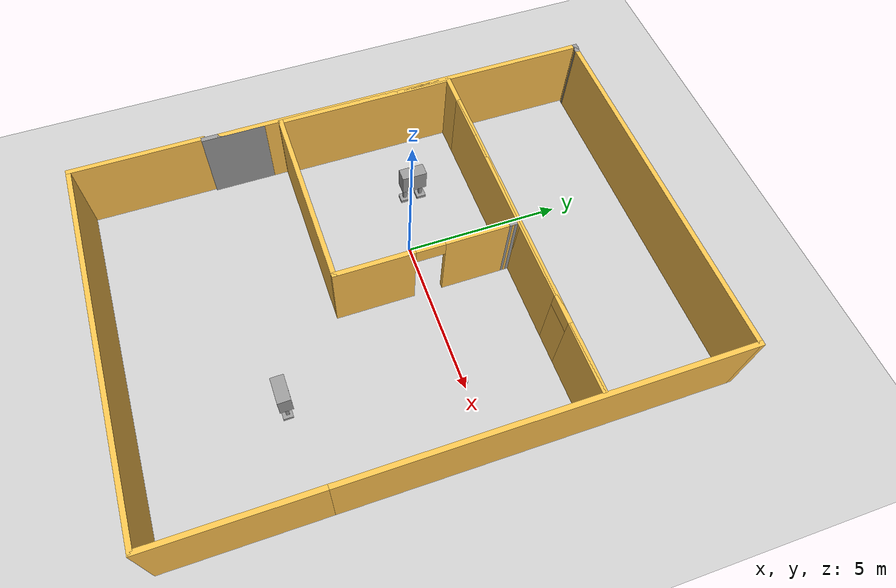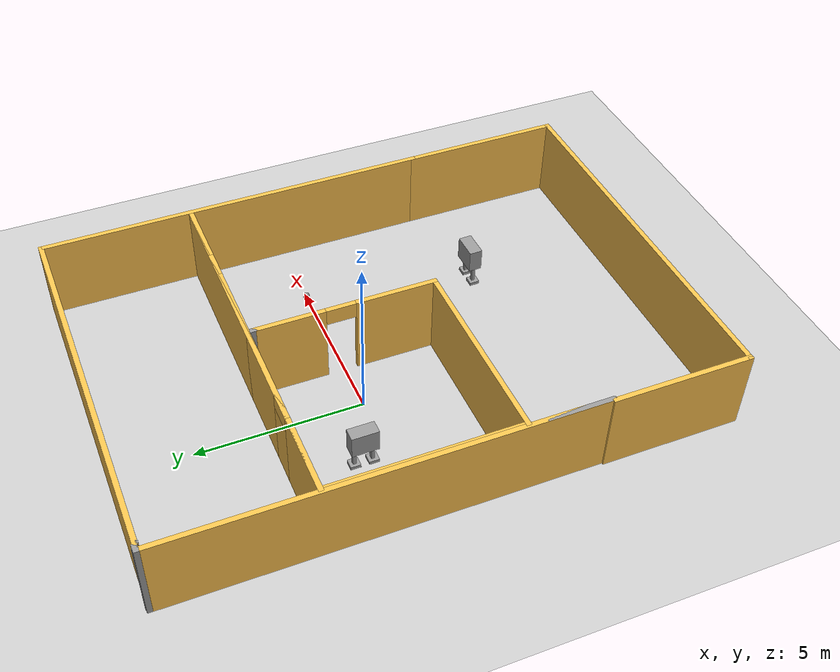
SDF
<sdf version="1.7">
 <world name="default">
  <plugin name="hello" filename="libhello.so"/>
  <light name="sun" type="directional">
   <pose>0 0 10 0 -0 0</pose>
   <diffuse>0.8 0.8 0.8 1</diffuse>
   <specular>0.2 0.2 0.2 1</specular>
   <attenuation>
    <range>1000</range>
    <constant>0.9</constant>
    <linear>0.01</linear>
    <quadratic>0.001</quadratic>
   </attenuation>
   <direction>-0.5 0.1 -0.9</direction>
   <spot><inner_angle>0</inner_angle><outer_angle>0</outer_angle><falloff>0</falloff></spot>
  </light>
  <model name="ground_plane">
   <static>1</static>
   <link name="link">
    <collision name="collision">
     <geometry><plane><normal>0 0 1</normal><size>100 100</size></plane></geometry>
     <surface>
      <contact><collide_bitmask>65535</collide_bitmask></contact>
      <friction><ode><mu>100</mu><mu2>50</mu2></ode></friction>
     </surface>
    </collision>
    <visual name="visual">
     <cast_shadows>0</cast_shadows>
     <geometry><plane><normal>0 0 1</normal><size>100 100</size></plane></geometry>
     <material>
      <script><uri>file://media/materials/scripts/gazebo.material</uri><name>Gazebo/Grey</name></script>
     </material>
    </visual>
   </link>
  </model>
  <gravity>0 0 -9.8</gravity>
  <magnetic_field>6e-06 2.3e-05 -4.2e-05</magnetic_field>
  <atmosphere type="adiabatic"/>
  <physics type="ode">
   <max_step_size>0.001</max_step_size>
   <real_time_factor>1</real_time_factor>
   <real_time_update_rate>1000</real_time_update_rate>
  </physics>
  <scene><ambient>0.4 0.4 0.4 1</ambient><background>0.7 0.7 0.7 1</background><shadows>1</shadows></scene>
  <spherical_coordinates>
   <surface_model>EARTH_WGS84</surface_model>
   <latitude_deg>0</latitude_deg>
   <longitude_deg>0</longitude_deg>
   <elevation>0</elevation>
   <heading_deg>0</heading_deg>
  </spherical_coordinates>
  <light name="user_point_light_0" type="point">
   <pose>-0.072578 -0.231324 1 0 -0 0</pose>
   <diffuse>0.5 0.5 0.5 1</diffuse>
   <specular>0.1 0.1 0.1 1</specular>
   <attenuation>
    <range>20</range>
    <constant>0.5</constant>
    <linear>0.01</linear>
    <quadratic>0.001</quadratic>
   </attenuation>
   <cast_shadows>0</cast_shadows>
   <direction>0 0 -1</direction>
   <spot><inner_angle>0</inner_angle><outer_angle>0</outer_angle><falloff>0</falloff></spot>
  </light>
  <model name="building2">
   <pose>1.37939 -1.00848 0 0 -0 0</pose>
   <link name="Wall_0">
    <collision name="Wall_0_Collision">
     <geometry><box><size>4.25 0.15 2.5</size></box></geometry>
     <pose>0 0 1.25 0 -0 0</pose>
    </collision>
    <visual name="Wall_0_Visual">
     <pose>0 0 1.25 0 -0 0</pose>
     <geometry><box><size>4.25 0.15 2.5</size></box></geometry>
     <material>
      <script><uri>file://media/materials/scripts/gazebo.material</uri><name>Gazebo/Grey</name></script>
      <ambient>1 0.764706 0.305882 1</ambient>
     </material>
     <meta><layer>0</layer></meta>
    </visual>
    <pose>-5.8 -6.32137 0 0 -0 -1.5708</pose>
   </link>
   <link name="Wall_1">
    <collision name="Wall_1_Collision">
     <geometry><box><size>11.75 0.15 2.5</size></box></geometry>
     <pose>0 0 1.25 0 -0 0</pose>
    </collision>
    <visual name="Wall_1_Visual">
     <pose>0 0 1.25 0 -0 0</pose>
     <geometry><box><size>11.75 0.15 2.5</size></box></geometry>
     <material>
      <script><uri>file://media/materials/scripts/gazebo.material</uri><name>Gazebo/Grey</name></script>
      <ambient>1 0.764706 0.305882 1</ambient>
     </material>
     <meta><layer>0</layer></meta>
    </visual>
    <pose>-0 -8.37137 0 0 -0 0</pose>
   </link>
   <link name="Wall_10">
    <collision name="Wall_10_Collision">
     <geometry><box><size>10.5 0.15 2.5</size></box></geometry>
     <pose>0 0 1.25 0 -0 0</pose>
    </collision>
    <visual name="Wall_10_Visual">
     <pose>0 0 1.25 0 -0 0</pose>
     <geometry><box><size>10.5 0.15 2.5</size></box></geometry>
     <material>
      <script><uri>file://media/materials/scripts/gazebo.material</uri><name>Gazebo/Grey</name></script>
      <ambient>1 0.764706 0.305882 1</ambient>
     </material>
     <meta><layer>0</layer></meta>
    </visual>
    <pose>0.497202 3.79652 0 0 -0 0</pose>
   </link>
   <link name="Wall_11">
    <pose>-0.002798 3.79652 0 0 -0 3.14159</pose>
    <visual name="Wall_11_Visual_0">
     <pose>-4.69672 0 1.25 0 -0 0</pose>
     <geometry><box><size>2.10657 0.15 2.5</size></box></geometry>
     <material>
      <script><uri>file://media/materials/scripts/gazebo.material</uri><name>Gazebo/Grey</name></script>
      <ambient>1 0.764706 0.305882 1</ambient>
     </material>
     <meta><layer>0</layer></meta>
    </visual>
    <collision name="Wall_11_Collision_0">
     <geometry><box><size>2.10657 0.15 2.5</size></box></geometry>
     <pose>-4.69672 0 1.25 0 -0 0</pose>
    </collision>
    <visual name="Wall_11_Visual_1">
     <pose>-0.212516 0 1.25 0 -0 0</pose>
     <geometry><box><size>5.06183 0.15 2.5</size></box></geometry>
     <material>
      <script><uri>file://media/materials/scripts/gazebo.material</uri><name>Gazebo/Grey</name></script>
      <ambient>1 0.764706 0.305882 1</ambient>
     </material>
     <meta><layer>0</layer></meta>
    </visual>
    <collision name="Wall_11_Collision_1">
     <geometry><box><size>5.06183 0.15 2.5</size></box></geometry>
     <pose>-0.212516 0 1.25 0 -0 0</pose>
    </collision>
    <visual name="Wall_11_Visual_2">
     <pose>4.4842 0 1.25 0 -0 0</pose>
     <geometry><box><size>2.5316 0.15 2.5</size></box></geometry>
     <material>
      <script><uri>file://media/materials/scripts/gazebo.material</uri><name>Gazebo/Grey</name></script>
      <ambient>1 0.764706 0.305882 1</ambient>
     </material>
     <meta><layer>0</layer></meta>
    </visual>
    <collision name="Wall_11_Collision_2">
     <geometry><box><size>2.5316 0.15 2.5</size></box></geometry>
     <pose>4.4842 0 1.25 0 -0 0</pose>
    </collision>
    <visual name="Wall_11_Visual_3">
     <pose>-3.19343 0 2.25 0 -0 0</pose>
     <geometry><box><size>0.9 0.15 0.5</size></box></geometry>
     <material>
      <script><uri>file://media/materials/scripts/gazebo.material</uri><name>Gazebo/Grey</name></script>
      <ambient>1 0.764706 0.305882 1</ambient>
     </material>
     <meta><layer>0</layer></meta>
    </visual>
    <collision name="Wall_11_Collision_3">
     <geometry><box><size>0.9 0.15 0.5</size></box></geometry>
     <pose>-3.19343 0 2.25 0 -0 0</pose>
    </collision>
    <visual name="Wall_11_Visual_4">
     <pose>2.7684 0 2.25 0 -0 0</pose>
     <geometry><box><size>0.9 0.15 0.5</size></box></geometry>
     <material>
      <script><uri>file://media/materials/scripts/gazebo.material</uri><name>Gazebo/Grey</name></script>
      <ambient>1 0.764706 0.305882 1</ambient>
     </material>
     <meta><layer>0</layer></meta>
    </visual>
    <collision name="Wall_11_Collision_4">
     <geometry><box><size>0.9 0.15 0.5</size></box></geometry>
     <pose>2.7684 0 2.25 0 -0 0</pose>
    </collision>
   </link>
   <link name="Wall_12">
    <collision name="Wall_12_Collision">
     <geometry><box><size>5.75 0.15 2.5</size></box></geometry>
     <pose>0 0 1.25 0 -0 0</pose>
    </collision>
    <visual name="Wall_12_Visual">
     <pose>0 0 1.25 0 -0 0</pose>
     <geometry><box><size>5.75 0.15 2.5</size></box></geometry>
     <material>
      <script><uri>file://media/materials/scripts/gazebo.material</uri><name>Gazebo/Grey</name></script>
      <ambient>1 0.764706 0.305882 1</ambient>
     </material>
     <meta><layer>0</layer></meta>
    </visual>
    <pose>-5.6778 0.996518 0 0 -0 -1.5708</pose>
   </link>
   <link name="Wall_13">
    <collision name="Wall_13_Collision">
     <geometry><box><size>6 0.15 2.5</size></box></geometry>
     <pose>0 0 1.25 0 -0 0</pose>
    </collision>
    <visual name="Wall_13_Visual">
     <pose>0 0 1.25 0 -0 0</pose>
     <geometry><box><size>6 0.15 2.5</size></box></geometry>
     <material>
      <script><uri>file://media/materials/scripts/gazebo.material</uri><name>Gazebo/Grey</name></script>
      <ambient>1 0.764706 0.305882 1</ambient>
     </material>
     <meta><layer>0</layer></meta>
    </visual>
    <pose>-2.7528 -1.80348 0 0 -0 0</pose>
   </link>
   <link name="Wall_14">
    <pose>0.172202 0.871518 0 0 -0 1.5708</pose>
    <visual name="Wall_14_Visual_0">
     <pose>-1.50462 0 1.25 0 -0 0</pose>
     <geometry><box><size>2.49076 0.15 2.5</size></box></geometry>
     <material>
      <script><uri>file://media/materials/scripts/gazebo.material</uri><name>Gazebo/Grey</name></script>
      <ambient>1 0.764706 0.305882 1</ambient>
     </material>
     <meta><layer>0</layer></meta>
    </visual>
    <collision name="Wall_14_Collision_0">
     <geometry><box><size>2.49076 0.15 2.5</size></box></geometry>
     <pose>-1.50462 0 1.25 0 -0 0</pose>
    </collision>
    <visual name="Wall_14_Visual_1">
     <pose>1.69538 0 1.25 0 -0 0</pose>
     <geometry><box><size>2.10924 0.15 2.5</size></box></geometry>
     <material>
      <script><uri>file://media/materials/scripts/gazebo.material</uri><name>Gazebo/Grey</name></script>
      <ambient>1 0.764706 0.305882 1</ambient>
     </material>
     <meta><layer>0</layer></meta>
    </visual>
    <collision name="Wall_14_Collision_1">
     <geometry><box><size>2.10924 0.15 2.5</size></box></geometry>
     <pose>1.69538 0 1.25 0 -0 0</pose>
    </collision>
    <visual name="Wall_14_Visual_2">
     <pose>0.190763 0 2.25 0 -0 0</pose>
     <geometry><box><size>0.9 0.15 0.5</size></box></geometry>
     <material>
      <script><uri>file://media/materials/scripts/gazebo.material</uri><name>Gazebo/Grey</name></script>
      <ambient>1 0.764706 0.305882 1</ambient>
     </material>
     <meta><layer>0</layer></meta>
    </visual>
    <collision name="Wall_14_Collision_2">
     <geometry><box><size>0.9 0.15 0.5</size></box></geometry>
     <pose>0.190763 0 2.25 0 -0 0</pose>
    </collision>
   </link>
   <link name="Wall_15">
    <collision name="Wall_15_Collision">
     <geometry><box><size>0.25 0.15 2.5</size></box></geometry>
     <pose>0 0 1.25 0 -0 0</pose>
    </collision>
    <visual name="Wall_15_Visual">
     <pose>0 0 1.25 0 -0 0</pose>
     <geometry><box><size>0.25 0.15 2.5</size></box></geometry>
     <material>
      <script><uri>file://media/materials/scripts/gazebo.material</uri><name>Gazebo/Grey</name></script>
      <ambient>1 1 1 1</ambient>
     </material>
     <meta><layer>0</layer></meta>
    </visual>
    <pose>0.172101 3.59658 0 0 -0 1.57281</pose>
   </link>
   <link name="Wall_2">
    <collision name="Wall_2_Collision">
     <geometry><box><size>5 0.15 2.5</size></box></geometry>
     <pose>0 0 1.25 0 -0 0</pose>
    </collision>
    <visual name="Wall_2_Visual">
     <pose>0 0 1.25 0 -0 0</pose>
     <geometry><box><size>5 0.15 2.5</size></box></geometry>
     <material>
      <script><uri>file://media/materials/scripts/gazebo.material</uri><name>Gazebo/Grey</name></script>
      <ambient>1 0.764706 0.305882 1</ambient>
     </material>
     <meta><layer>0</layer></meta>
    </visual>
    <pose>5.8 -5.94637 0 0 -0 1.5708</pose>
   </link>
   <link name="Wall_3">
    <collision name="Wall_3_Collision">
     <geometry><box><size>12 0.15 2.5</size></box></geometry>
     <pose>0 0 1.25 0 -0 0</pose>
    </collision>
    <visual name="Wall_3_Visual">
     <pose>0 0 1.25 0 -0 0</pose>
     <geometry><box><size>12 0.15 2.5</size></box></geometry>
     <material>
      <script><uri>file://media/materials/scripts/gazebo.material</uri><name>Gazebo/Grey</name></script>
      <ambient>1 0.764706 0.305882 1</ambient>
     </material>
     <meta><layer>0</layer></meta>
    </visual>
    <pose>5.8 2.40363 0 0 -0 1.5708</pose>
   </link>
   <link name="Wall_4">
    <collision name="Wall_4_Collision">
     <geometry><box><size>11.5 0.15 2.5</size></box></geometry>
     <pose>0 0 1.25 0 -0 0</pose>
    </collision>
    <visual name="Wall_4_Visual">
     <pose>0 0 1.25 0 -0 0</pose>
     <geometry><box><size>11.5 0.15 2.5</size></box></geometry>
     <material>
      <script><uri>file://media/materials/scripts/gazebo.material</uri><name>Gazebo/Grey</name></script>
      <ambient>1 0.764706 0.305882 1</ambient>
     </material>
     <meta><layer>0</layer></meta>
    </visual>
    <pose>0.125 8.32863 0 0 -0 3.14159</pose>
   </link>
   <link name="Wall_5">
    <collision name="Wall_5_Collision">
     <geometry><box><size>0.25 0.15 2.5</size></box></geometry>
     <pose>0 0 1.25 0 -0 0</pose>
    </collision>
    <visual name="Wall_5_Visual">
     <pose>0 0 1.25 0 -0 0</pose>
     <geometry><box><size>0.25 0.15 2.5</size></box></geometry>
     <material>
      <script><uri>file://media/materials/scripts/gazebo.material</uri><name>Gazebo/Grey</name></script>
      <ambient>1 1 1 1</ambient>
     </material>
     <meta><layer>0</layer></meta>
    </visual>
    <pose>-5.5983 8.34157 0 0 -0 2.87979</pose>
   </link>
   <link name="Wall_6">
    <collision name="Wall_6_Collision">
     <geometry><box><size>0.25 0.15 2.5</size></box></geometry>
     <pose>0 0 1.25 0 -0 0</pose>
    </collision>
    <visual name="Wall_6_Visual">
     <pose>0 0 1.25 0 -0 0</pose>
     <geometry><box><size>0.25 0.15 2.5</size></box></geometry>
     <material>
      <script><uri>file://media/materials/scripts/gazebo.material</uri><name>Gazebo/Grey</name></script>
      <ambient>1 1 1 1</ambient>
     </material>
     <meta><layer>0</layer></meta>
    </visual>
    <pose>-5.69659 8.35451 0 0 -0 3.14159</pose>
   </link>
   <link name="Wall_7">
    <collision name="Wall_7_Collision">
     <geometry><box><size>12.75 0.15 2.5</size></box></geometry>
     <pose>0 0 1.25 0 -0 0</pose>
    </collision>
    <visual name="Wall_7_Visual">
     <pose>0 0 1.25 0 -0 0</pose>
     <geometry><box><size>12.75 0.15 2.5</size></box></geometry>
     <material>
      <script><uri>file://media/materials/scripts/gazebo.material</uri><name>Gazebo/Grey</name></script>
      <ambient>1 0.764706 0.305882 1</ambient>
     </material>
     <meta><layer>0</layer></meta>
    </visual>
    <pose>-5.74659 2.05451 0 0 -0 -1.5708</pose>
   </link>
   <link name="Wall_8">
    <collision name="Wall_8_Collision">
     <geometry><box><size>2 0.15 2.5</size></box></geometry>
     <pose>0 0 1.25 0 -0 0</pose>
    </collision>
    <visual name="Wall_8_Visual">
     <pose>0 0 1.25 0 -0 0</pose>
     <geometry><box><size>2 0.15 2.5</size></box></geometry>
     <material>
      <script><uri>file://media/materials/scripts/gazebo.material</uri><name>Gazebo/Grey</name></script>
      <ambient>1 1 1 1</ambient>
     </material>
     <meta><layer>0</layer></meta>
    </visual>
    <pose>-5.74659 -3.32049 0 0 -0 1.5708</pose>
   </link>
   <static>1</static>
  </model>
  <model name="robot2">
   <link name="link_0">
    <inertial>
     <mass>1</mass>
     <inertia>
      <ixx>0.166667</ixx>
      <ixy>0</ixy>
      <ixz>0</ixz>
      <iyy>0.166667</iyy>
      <iyz>0</iyz>
      <izz>0.166667</izz>
     </inertia>
    </inertial>
    <pose>-0.10875 0.297304 -0.300564 0 -0 0</pose>
    <visual name="visual">
     <geometry><box><size>0.3 0.3 0.1</size></box></geometry>
     <material>
      <lighting>1</lighting>
      <script><uri>file://media/materials/scripts/gazebo.material</uri><name>Gazebo/Grey</name></script>
      <shader type="pixel"><normal_map>__default__</normal_map></shader>
      <ambient>0.3 0.3 0.3 1</ambient>
      <diffuse>0.7 0.7 0.7 1</diffuse>
      <specular>0.01 0.01 0.01 1</specular>
      <emissive>0 0 0 1</emissive>
     </material>
    </visual>
    <collision name="collision">
     <geometry><box><size>0.3 0.3 0.1</size></box></geometry>
     <surface>
      <friction>
       <ode><mu>1</mu><mu2>1</mu2><fdir1>0 0 0</fdir1><slip1>0</slip1><slip2>0</slip2></ode>
       <torsional>
        <coefficient>1</coefficient>
        <patch_radius>0</patch_radius>
        <surface_radius>0</surface_radius>
        <use_patch_radius>1</use_patch_radius>
        <ode><slip>0</slip></ode>
       </torsional>
      </friction>
      <bounce><restitution_coefficient>0</restitution_coefficient><threshold>1e+06</threshold></bounce>
      <contact>
       <collide_without_contact>0</collide_without_contact>
       <collide_without_contact_bitmask>1</collide_without_contact_bitmask>
       <collide_bitmask>1</collide_bitmask>
       <ode>
        <soft_cfm>0</soft_cfm>
        <soft_erp>0.2</soft_erp>
        <kp>1e+13</kp>
        <kd>1</kd>
        <max_vel>0.01</max_vel>
        <min_depth>0</min_depth>
       </ode>
       <bullet>
        <split_impulse>1</split_impulse>
        <split_impulse_penetration_threshold>-0.01</split_impulse_penetration_threshold>
        <soft_cfm>0</soft_cfm>
        <soft_erp>0.2</soft_erp>
        <kp>1e+13</kp>
        <kd>1</kd>
       </bullet>
      </contact>
     </surface>
    </collision>
   </link>
   <link name="link_0_clone">
    <inertial>
     <mass>1</mass>
     <inertia>
      <ixx>0.166667</ixx>
      <ixy>0</ixy>
      <ixz>0</ixz>
      <iyy>0.166667</iyy>
      <iyz>0</iyz>
      <izz>0.166667</izz>
     </inertia>
    </inertial>
    <pose>-0.116165 -0.240498 -0.300564 0 -0 0</pose>
    <visual name="visual">
     <geometry><box><size>0.3 0.3 0.1</size></box></geometry>
     <material>
      <lighting>1</lighting>
      <script><uri>file://media/materials/scripts/gazebo.material</uri><name>Gazebo/Grey</name></script>
      <shader type="pixel"><normal_map>__default__</normal_map></shader>
      <ambient>0.3 0.3 0.3 1</ambient>
      <diffuse>0.7 0.7 0.7 1</diffuse>
      <specular>0.01 0.01 0.01 1</specular>
      <emissive>0 0 0 1</emissive>
     </material>
    </visual>
    <collision name="collision">
     <geometry><box><size>0.3 0.3 0.1</size></box></geometry>
     <surface>
      <friction>
       <ode><mu>1</mu><mu2>1</mu2><fdir1>0 0 0</fdir1><slip1>0</slip1><slip2>0</slip2></ode>
       <torsional>
        <coefficient>1</coefficient>
        <patch_radius>0</patch_radius>
        <surface_radius>0</surface_radius>
        <use_patch_radius>1</use_patch_radius>
        <ode><slip>0</slip></ode>
       </torsional>
      </friction>
      <bounce><restitution_coefficient>0</restitution_coefficient><threshold>1e+06</threshold></bounce>
      <contact>
       <collide_without_contact>0</collide_without_contact>
       <collide_without_contact_bitmask>1</collide_without_contact_bitmask>
       <collide_bitmask>1</collide_bitmask>
       <ode>
        <soft_cfm>0</soft_cfm>
        <soft_erp>0.2</soft_erp>
        <kp>1e+13</kp>
        <kd>1</kd>
        <max_vel>0.01</max_vel>
        <min_depth>0</min_depth>
       </ode>
       <bullet>
        <split_impulse>1</split_impulse>
        <split_impulse_penetration_threshold>-0.01</split_impulse_penetration_threshold>
        <soft_cfm>0</soft_cfm>
        <soft_erp>0.2</soft_erp>
        <kp>1e+13</kp>
        <kd>1</kd>
       </bullet>
      </contact>
     </surface>
    </collision>
   </link>
   <link name="link_1">
    <inertial>
     <mass>1</mass>
     <inertia>
      <ixx>0.166667</ixx>
      <ixy>0</ixy>
      <ixz>0</ixz>
      <iyy>0.166667</iyy>
      <iyz>0</iyz>
      <izz>0.166667</izz>
     </inertia>
    </inertial>
    <pose>-0.122505 0.298897 -0.001461 0 -0 0</pose>
    <visual name="visual">
     <geometry><box><size>0.1 0.1 0.5</size></box></geometry>
     <material>
      <lighting>1</lighting>
      <script><uri>file://media/materials/scripts/gazebo.material</uri><name>Gazebo/Grey</name></script>
      <shader type="pixel"><normal_map>__default__</normal_map></shader>
      <ambient>0.3 0.3 0.3 1</ambient>
      <diffuse>0.7 0.7 0.7 1</diffuse>
      <specular>0.01 0.01 0.01 1</specular>
      <emissive>0 0 0 1</emissive>
     </material>
    </visual>
    <collision name="collision">
     <geometry><box><size>0.1 0.1 0.5</size></box></geometry>
     <surface>
      <friction>
       <ode><mu>1</mu><mu2>1</mu2><fdir1>0 0 0</fdir1><slip1>0</slip1><slip2>0</slip2></ode>
       <torsional>
        <coefficient>1</coefficient>
        <patch_radius>0</patch_radius>
        <surface_radius>0</surface_radius>
        <use_patch_radius>1</use_patch_radius>
        <ode><slip>0</slip></ode>
       </torsional>
      </friction>
      <bounce><restitution_coefficient>0</restitution_coefficient><threshold>1e+06</threshold></bounce>
      <contact>
       <collide_without_contact>0</collide_without_contact>
       <collide_without_contact_bitmask>1</collide_without_contact_bitmask>
       <collide_bitmask>1</collide_bitmask>
       <ode>
        <soft_cfm>0</soft_cfm>
        <soft_erp>0.2</soft_erp>
        <kp>1e+13</kp>
        <kd>1</kd>
        <max_vel>0.01</max_vel>
        <min_depth>0</min_depth>
       </ode>
       <bullet>
        <split_impulse>1</split_impulse>
        <split_impulse_penetration_threshold>-0.01</split_impulse_penetration_threshold>
        <soft_cfm>0</soft_cfm>
        <soft_erp>0.2</soft_erp>
        <kp>1e+13</kp>
        <kd>1</kd>
       </bullet>
      </contact>
     </surface>
    </collision>
   </link>
   <link name="link_1_clone_0">
    <inertial>
     <mass>1</mass>
     <inertia>
      <ixx>0.166667</ixx>
      <ixy>0</ixy>
      <ixz>0</ixz>
      <iyy>0.166667</iyy>
      <iyz>0</iyz>
      <izz>0.166667</izz>
     </inertia>
    </inertial>
    <pose>-0.126 -0.231791 -0.001461 0 -0 0</pose>
    <visual name="visual">
     <geometry><box><size>0.1 0.1 0.5</size></box></geometry>
     <material>
      <lighting>1</lighting>
      <script><uri>file://media/materials/scripts/gazebo.material</uri><name>Gazebo/Grey</name></script>
      <shader type="pixel"><normal_map>__default__</normal_map></shader>
      <ambient>0.3 0.3 0.3 1</ambient>
      <diffuse>0.7 0.7 0.7 1</diffuse>
      <specular>0.01 0.01 0.01 1</specular>
      <emissive>0 0 0 1</emissive>
     </material>
    </visual>
    <collision name="collision">
     <geometry><box><size>0.1 0.1 0.5</size></box></geometry>
     <surface>
      <friction>
       <ode><mu>1</mu><mu2>1</mu2><fdir1>0 0 0</fdir1><slip1>0</slip1><slip2>0</slip2></ode>
       <torsional>
        <coefficient>1</coefficient>
        <patch_radius>0</patch_radius>
        <surface_radius>0</surface_radius>
        <use_patch_radius>1</use_patch_radius>
        <ode><slip>0</slip></ode>
       </torsional>
      </friction>
      <bounce><restitution_coefficient>0</restitution_coefficient><threshold>1e+06</threshold></bounce>
      <contact>
       <collide_without_contact>0</collide_without_contact>
       <collide_without_contact_bitmask>1</collide_without_contact_bitmask>
       <collide_bitmask>1</collide_bitmask>
       <ode>
        <soft_cfm>0</soft_cfm>
        <soft_erp>0.2</soft_erp>
        <kp>1e+13</kp>
        <kd>1</kd>
        <max_vel>0.01</max_vel>
        <min_depth>0</min_depth>
       </ode>
       <bullet>
        <split_impulse>1</split_impulse>
        <split_impulse_penetration_threshold>-0.01</split_impulse_penetration_threshold>
        <soft_cfm>0</soft_cfm>
        <soft_erp>0.2</soft_erp>
        <kp>1e+13</kp>
        <kd>1</kd>
       </bullet>
      </contact>
     </surface>
    </collision>
   </link>
   <link name="link_2">
    <inertial>
     <mass>1</mass>
     <inertia>
      <ixx>0.166667</ixx>
      <ixy>0</ixy>
      <ixz>0</ixz>
      <iyy>0.166667</iyy>
      <iyz>0</iyz>
      <izz>0.166667</izz>
     </inertia>
    </inertial>
    <pose>-0.125925 0.03292 0.605509 0 -0 0</pose>
    <visual name="visual">
     <geometry><box><size>0.4 0.8 0.7</size></box></geometry>
     <material>
      <lighting>1</lighting>
      <script><uri>file://media/materials/scripts/gazebo.material</uri><name>Gazebo/Grey</name></script>
      <shader type="pixel"><normal_map>__default__</normal_map></shader>
      <ambient>0.3 0.3 0.3 1</ambient>
      <diffuse>0.7 0.7 0.7 1</diffuse>
      <specular>0.01 0.01 0.01 1</specular>
      <emissive>0 0 0 1</emissive>
     </material>
    </visual>
    <collision name="collision">
     <geometry><box><size>0.4 0.8 0.7</size></box></geometry>
     <surface>
      <friction>
       <ode><mu>1</mu><mu2>1</mu2><fdir1>0 0 0</fdir1><slip1>0</slip1><slip2>0</slip2></ode>
       <torsional>
        <coefficient>1</coefficient>
        <patch_radius>0</patch_radius>
        <surface_radius>0</surface_radius>
        <use_patch_radius>1</use_patch_radius>
        <ode><slip>0</slip></ode>
       </torsional>
      </friction>
      <bounce><restitution_coefficient>0</restitution_coefficient><threshold>1e+06</threshold></bounce>
      <contact>
       <collide_without_contact>0</collide_without_contact>
       <collide_without_contact_bitmask>1</collide_without_contact_bitmask>
       <collide_bitmask>1</collide_bitmask>
       <ode>
        <soft_cfm>0</soft_cfm>
        <soft_erp>0.2</soft_erp>
        <kp>1e+13</kp>
        <kd>1</kd>
        <max_vel>0.01</max_vel>
        <min_depth>0</min_depth>
       </ode>
       <bullet>
        <split_impulse>1</split_impulse>
        <split_impulse_penetration_threshold>-0.01</split_impulse_penetration_threshold>
        <soft_cfm>0</soft_cfm>
        <soft_erp>0.2</soft_erp>
        <kp>1e+13</kp>
        <kd>1</kd>
       </bullet>
      </contact>
     </surface>
    </collision>
   </link>
   <joint name="link_0_JOINT_0" type="revolute">
    <parent>link_0</parent>
    <child>link_1</child>
    <axis>
     <xyz>1 0 0</xyz>
     <limit>
      <lower>-1.79769e+308</lower>
      <upper>1.79769e+308</upper>
      <effort>-1</effort>
      <velocity>-1</velocity>
     </limit>
     <dynamics>
      <spring_reference>0</spring_reference>
      <spring_stiffness>0</spring_stiffness>
      <damping>0</damping>
      <friction>0</friction>
     </dynamics>
    </axis>
    <physics>
     <ode><limit><cfm>0</cfm><erp>0.2</erp></limit><suspension><cfm>0</cfm><erp>0.2</erp></suspension></ode>
    </physics>
   </joint>
   <joint name="link_0_clone_JOINT_2" type="revolute">
    <parent>link_0_clone</parent>
    <child>link_1_clone_0</child>
    <axis>
     <xyz>1 0 0</xyz>
     <limit>
      <lower>-1.79769e+308</lower>
      <upper>1.79769e+308</upper>
      <effort>-1</effort>
      <velocity>-1</velocity>
     </limit>
     <dynamics>
      <spring_reference>0</spring_reference>
      <spring_stiffness>0</spring_stiffness>
      <damping>0</damping>
      <friction>0</friction>
     </dynamics>
    </axis>
    <physics>
     <ode><limit><cfm>0</cfm><erp>0.2</erp></limit><suspension><cfm>0</cfm><erp>0.2</erp></suspension></ode>
    </physics>
   </joint>
   <joint name="link_1_JOINT_1" type="revolute">
    <parent>link_1</parent>
    <child>link_2</child>
    <axis>
     <xyz>1 0 0</xyz>
     <limit>
      <lower>-1.79769e+308</lower>
      <upper>1.79769e+308</upper>
      <effort>-1</effort>
      <velocity>-1</velocity>
     </limit>
     <dynamics>
      <spring_reference>0</spring_reference>
      <spring_stiffness>0</spring_stiffness>
      <damping>0</damping>
      <friction>0</friction>
     </dynamics>
    </axis>
    <physics>
     <ode><limit><cfm>0</cfm><erp>0.2</erp></limit><suspension><cfm>0</cfm><erp>0.2</erp></suspension></ode>
    </physics>
   </joint>
   <joint name="link_1_clone_0_JOINT_3" type="revolute">
    <parent>link_1_clone_0</parent>
    <child>link_2</child>
    <axis>
     <xyz>1 0 0</xyz>
     <limit>
      <lower>-1.79769e+308</lower>
      <upper>1.79769e+308</upper>
      <effort>-1</effort>
      <velocity>-1</velocity>
     </limit>
     <dynamics>
      <spring_reference>0</spring_reference>
      <spring_stiffness>0</spring_stiffness>
      <damping>0</damping>
      <friction>0</friction>
     </dynamics>
    </axis>
    <physics>
     <ode><limit><cfm>0</cfm><erp>0.2</erp></limit><suspension><cfm>0</cfm><erp>0.2</erp></suspension></ode>
    </physics>
   </joint>
   <static>0</static>
   <pose>-1.85631 0.755818 0.350565 -4e-06 2e-06 0.000701</pose>
  </model>
  <model name="robot2_0">
   <link name="link_0">
    <inertial>
     <mass>1</mass>
     <inertia>
      <ixx>0.166667</ixx>
      <ixy>0</ixy>
      <ixz>0</ixz>
      <iyy>0.166667</iyy>
      <iyz>0</iyz>
      <izz>0.166667</izz>
     </inertia>
    </inertial>
    <pose>-0.10875 0.297304 -0.300564 0 -0 0</pose>
    <visual name="visual">
     <geometry><box><size>0.3 0.3 0.1</size></box></geometry>
     <material>
      <lighting>1</lighting>
      <script><uri>file://media/materials/scripts/gazebo.material</uri><name>Gazebo/Grey</name></script>
      <shader type="pixel"><normal_map>__default__</normal_map></shader>
      <ambient>0.3 0.3 0.3 1</ambient>
      <diffuse>0.7 0.7 0.7 1</diffuse>
      <specular>0.01 0.01 0.01 1</specular>
      <emissive>0 0 0 1</emissive>
     </material>
    </visual>
    <collision name="collision">
     <geometry><box><size>0.3 0.3 0.1</size></box></geometry>
     <surface>
      <friction>
       <ode><mu>1</mu><mu2>1</mu2><fdir1>0 0 0</fdir1><slip1>0</slip1><slip2>0</slip2></ode>
       <torsional>
        <coefficient>1</coefficient>
        <patch_radius>0</patch_radius>
        <surface_radius>0</surface_radius>
        <use_patch_radius>1</use_patch_radius>
        <ode><slip>0</slip></ode>
       </torsional>
      </friction>
      <bounce><restitution_coefficient>0</restitution_coefficient><threshold>1e+06</threshold></bounce>
      <contact>
       <collide_without_contact>0</collide_without_contact>
       <collide_without_contact_bitmask>1</collide_without_contact_bitmask>
       <collide_bitmask>1</collide_bitmask>
       <ode>
        <soft_cfm>0</soft_cfm>
        <soft_erp>0.2</soft_erp>
        <kp>1e+13</kp>
        <kd>1</kd>
        <max_vel>0.01</max_vel>
        <min_depth>0</min_depth>
       </ode>
       <bullet>
        <split_impulse>1</split_impulse>
        <split_impulse_penetration_threshold>-0.01</split_impulse_penetration_threshold>
        <soft_cfm>0</soft_cfm>
        <soft_erp>0.2</soft_erp>
        <kp>1e+13</kp>
        <kd>1</kd>
       </bullet>
      </contact>
     </surface>
    </collision>
   </link>
   <link name="link_0_clone">
    <inertial>
     <mass>1</mass>
     <inertia>
      <ixx>0.166667</ixx>
      <ixy>0</ixy>
      <ixz>0</ixz>
      <iyy>0.166667</iyy>
      <iyz>0</iyz>
      <izz>0.166667</izz>
     </inertia>
    </inertial>
    <pose>-0.116165 -0.240498 -0.300564 0 -0 0</pose>
    <visual name="visual">
     <geometry><box><size>0.3 0.3 0.1</size></box></geometry>
     <material>
      <lighting>1</lighting>
      <script><uri>file://media/materials/scripts/gazebo.material</uri><name>Gazebo/Grey</name></script>
      <shader type="pixel"><normal_map>__default__</normal_map></shader>
      <ambient>0.3 0.3 0.3 1</ambient>
      <diffuse>0.7 0.7 0.7 1</diffuse>
      <specular>0.01 0.01 0.01 1</specular>
      <emissive>0 0 0 1</emissive>
     </material>
    </visual>
    <collision name="collision">
     <geometry><box><size>0.3 0.3 0.1</size></box></geometry>
     <surface>
      <friction>
       <ode><mu>1</mu><mu2>1</mu2><fdir1>0 0 0</fdir1><slip1>0</slip1><slip2>0</slip2></ode>
       <torsional>
        <coefficient>1</coefficient>
        <patch_radius>0</patch_radius>
        <surface_radius>0</surface_radius>
        <use_patch_radius>1</use_patch_radius>
        <ode><slip>0</slip></ode>
       </torsional>
      </friction>
      <bounce><restitution_coefficient>0</restitution_coefficient><threshold>1e+06</threshold></bounce>
      <contact>
       <collide_without_contact>0</collide_without_contact>
       <collide_without_contact_bitmask>1</collide_without_contact_bitmask>
       <collide_bitmask>1</collide_bitmask>
       <ode>
        <soft_cfm>0</soft_cfm>
        <soft_erp>0.2</soft_erp>
        <kp>1e+13</kp>
        <kd>1</kd>
        <max_vel>0.01</max_vel>
        <min_depth>0</min_depth>
       </ode>
       <bullet>
        <split_impulse>1</split_impulse>
        <split_impulse_penetration_threshold>-0.01</split_impulse_penetration_threshold>
        <soft_cfm>0</soft_cfm>
        <soft_erp>0.2</soft_erp>
        <kp>1e+13</kp>
        <kd>1</kd>
       </bullet>
      </contact>
     </surface>
    </collision>
   </link>
   <link name="link_1">
    <inertial>
     <mass>1</mass>
     <inertia>
      <ixx>0.166667</ixx>
      <ixy>0</ixy>
      <ixz>0</ixz>
      <iyy>0.166667</iyy>
      <iyz>0</iyz>
      <izz>0.166667</izz>
     </inertia>
    </inertial>
    <pose>-0.122505 0.298897 -0.001461 0 -0 0</pose>
    <visual name="visual">
     <geometry><box><size>0.1 0.1 0.5</size></box></geometry>
     <material>
      <lighting>1</lighting>
      <script><uri>file://media/materials/scripts/gazebo.material</uri><name>Gazebo/Grey</name></script>
      <shader type="pixel"><normal_map>__default__</normal_map></shader>
      <ambient>0.3 0.3 0.3 1</ambient>
      <diffuse>0.7 0.7 0.7 1</diffuse>
      <specular>0.01 0.01 0.01 1</specular>
      <emissive>0 0 0 1</emissive>
     </material>
    </visual>
    <collision name="collision">
     <geometry><box><size>0.1 0.1 0.5</size></box></geometry>
     <surface>
      <friction>
       <ode><mu>1</mu><mu2>1</mu2><fdir1>0 0 0</fdir1><slip1>0</slip1><slip2>0</slip2></ode>
       <torsional>
        <coefficient>1</coefficient>
        <patch_radius>0</patch_radius>
        <surface_radius>0</surface_radius>
        <use_patch_radius>1</use_patch_radius>
        <ode><slip>0</slip></ode>
       </torsional>
      </friction>
      <bounce><restitution_coefficient>0</restitution_coefficient><threshold>1e+06</threshold></bounce>
      <contact>
       <collide_without_contact>0</collide_without_contact>
       <collide_without_contact_bitmask>1</collide_without_contact_bitmask>
       <collide_bitmask>1</collide_bitmask>
       <ode>
        <soft_cfm>0</soft_cfm>
        <soft_erp>0.2</soft_erp>
        <kp>1e+13</kp>
        <kd>1</kd>
        <max_vel>0.01</max_vel>
        <min_depth>0</min_depth>
       </ode>
       <bullet>
        <split_impulse>1</split_impulse>
        <split_impulse_penetration_threshold>-0.01</split_impulse_penetration_threshold>
        <soft_cfm>0</soft_cfm>
        <soft_erp>0.2</soft_erp>
        <kp>1e+13</kp>
        <kd>1</kd>
       </bullet>
      </contact>
     </surface>
    </collision>
   </link>
   <link name="link_1_clone_0">
    <inertial>
     <mass>1</mass>
     <inertia>
      <ixx>0.166667</ixx>
      <ixy>0</ixy>
      <ixz>0</ixz>
      <iyy>0.166667</iyy>
      <iyz>0</iyz>
      <izz>0.166667</izz>
     </inertia>
    </inertial>
    <pose>-0.126 -0.231791 -0.001461 0 -0 0</pose>
    <visual name="visual">
     <geometry><box><size>0.1 0.1 0.5</size></box></geometry>
     <material>
      <lighting>1</lighting>
      <script><uri>file://media/materials/scripts/gazebo.material</uri><name>Gazebo/Grey</name></script>
      <shader type="pixel"><normal_map>__default__</normal_map></shader>
      <ambient>0.3 0.3 0.3 1</ambient>
      <diffuse>0.7 0.7 0.7 1</diffuse>
      <specular>0.01 0.01 0.01 1</specular>
      <emissive>0 0 0 1</emissive>
     </material>
    </visual>
    <collision name="collision">
     <geometry><box><size>0.1 0.1 0.5</size></box></geometry>
     <surface>
      <friction>
       <ode><mu>1</mu><mu2>1</mu2><fdir1>0 0 0</fdir1><slip1>0</slip1><slip2>0</slip2></ode>
       <torsional>
        <coefficient>1</coefficient>
        <patch_radius>0</patch_radius>
        <surface_radius>0</surface_radius>
        <use_patch_radius>1</use_patch_radius>
        <ode><slip>0</slip></ode>
       </torsional>
      </friction>
      <bounce><restitution_coefficient>0</restitution_coefficient><threshold>1e+06</threshold></bounce>
      <contact>
       <collide_without_contact>0</collide_without_contact>
       <collide_without_contact_bitmask>1</collide_without_contact_bitmask>
       <collide_bitmask>1</collide_bitmask>
       <ode>
        <soft_cfm>0</soft_cfm>
        <soft_erp>0.2</soft_erp>
        <kp>1e+13</kp>
        <kd>1</kd>
        <max_vel>0.01</max_vel>
        <min_depth>0</min_depth>
       </ode>
       <bullet>
        <split_impulse>1</split_impulse>
        <split_impulse_penetration_threshold>-0.01</split_impulse_penetration_threshold>
        <soft_cfm>0</soft_cfm>
        <soft_erp>0.2</soft_erp>
        <kp>1e+13</kp>
        <kd>1</kd>
       </bullet>
      </contact>
     </surface>
    </collision>
   </link>
   <link name="link_2">
    <inertial>
     <mass>1</mass>
     <inertia>
      <ixx>0.166667</ixx>
      <ixy>0</ixy>
      <ixz>0</ixz>
      <iyy>0.166667</iyy>
      <iyz>0</iyz>
      <izz>0.166667</izz>
     </inertia>
    </inertial>
    <pose>-0.125925 0.03292 0.605509 0 -0 0</pose>
    <visual name="visual">
     <geometry><box><size>0.4 0.8 0.7</size></box></geometry>
     <material>
      <lighting>1</lighting>
      <script><uri>file://media/materials/scripts/gazebo.material</uri><name>Gazebo/Grey</name></script>
      <shader type="pixel"><normal_map>__default__</normal_map></shader>
      <ambient>0.3 0.3 0.3 1</ambient>
      <diffuse>0.7 0.7 0.7 1</diffuse>
      <specular>0.01 0.01 0.01 1</specular>
      <emissive>0 0 0 1</emissive>
     </material>
    </visual>
    <collision name="collision">
     <geometry><box><size>0.4 0.8 0.7</size></box></geometry>
     <surface>
      <friction>
       <ode><mu>1</mu><mu2>1</mu2><fdir1>0 0 0</fdir1><slip1>0</slip1><slip2>0</slip2></ode>
       <torsional>
        <coefficient>1</coefficient>
        <patch_radius>0</patch_radius>
        <surface_radius>0</surface_radius>
        <use_patch_radius>1</use_patch_radius>
        <ode><slip>0</slip></ode>
       </torsional>
      </friction>
      <bounce><restitution_coefficient>0</restitution_coefficient><threshold>1e+06</threshold></bounce>
      <contact>
       <collide_without_contact>0</collide_without_contact>
       <collide_without_contact_bitmask>1</collide_without_contact_bitmask>
       <collide_bitmask>1</collide_bitmask>
       <ode>
        <soft_cfm>0</soft_cfm>
        <soft_erp>0.2</soft_erp>
        <kp>1e+13</kp>
        <kd>1</kd>
        <max_vel>0.01</max_vel>
        <min_depth>0</min_depth>
       </ode>
       <bullet>
        <split_impulse>1</split_impulse>
        <split_impulse_penetration_threshold>-0.01</split_impulse_penetration_threshold>
        <soft_cfm>0</soft_cfm>
        <soft_erp>0.2</soft_erp>
        <kp>1e+13</kp>
        <kd>1</kd>
       </bullet>
      </contact>
     </surface>
    </collision>
   </link>
   <joint name="link_0_JOINT_0" type="revolute">
    <parent>link_0</parent>
    <child>link_1</child>
    <axis>
     <xyz>1 0 0</xyz>
     <limit>
      <lower>-1.79769e+308</lower>
      <upper>1.79769e+308</upper>
      <effort>-1</effort>
      <velocity>-1</velocity>
     </limit>
     <dynamics>
      <spring_reference>0</spring_reference>
      <spring_stiffness>0</spring_stiffness>
      <damping>0</damping>
      <friction>0</friction>
     </dynamics>
    </axis>
    <physics>
     <ode><limit><cfm>0</cfm><erp>0.2</erp></limit><suspension><cfm>0</cfm><erp>0.2</erp></suspension></ode>
    </physics>
   </joint>
   <joint name="link_0_clone_JOINT_2" type="revolute">
    <parent>link_0_clone</parent>
    <child>link_1_clone_0</child>
    <axis>
     <xyz>1 0 0</xyz>
     <limit>
      <lower>-1.79769e+308</lower>
      <upper>1.79769e+308</upper>
      <effort>-1</effort>
      <velocity>-1</velocity>
     </limit>
     <dynamics>
      <spring_reference>0</spring_reference>
      <spring_stiffness>0</spring_stiffness>
      <damping>0</damping>
      <friction>0</friction>
     </dynamics>
    </axis>
    <physics>
     <ode><limit><cfm>0</cfm><erp>0.2</erp></limit><suspension><cfm>0</cfm><erp>0.2</erp></suspension></ode>
    </physics>
   </joint>
   <joint name="link_1_JOINT_1" type="revolute">
    <parent>link_1</parent>
    <child>link_2</child>
    <axis>
     <xyz>1 0 0</xyz>
     <limit>
      <lower>-1.79769e+308</lower>
      <upper>1.79769e+308</upper>
      <effort>-1</effort>
      <velocity>-1</velocity>
     </limit>
     <dynamics>
      <spring_reference>0</spring_reference>
      <spring_stiffness>0</spring_stiffness>
      <damping>0</damping>
      <friction>0</friction>
     </dynamics>
    </axis>
    <physics>
     <ode><limit><cfm>0</cfm><erp>0.2</erp></limit><suspension><cfm>0</cfm><erp>0.2</erp></suspension></ode>
    </physics>
   </joint>
   <joint name="link_1_clone_0_JOINT_3" type="revolute">
    <parent>link_1_clone_0</parent>
    <child>link_2</child>
    <axis>
     <xyz>1 0 0</xyz>
     <limit>
      <lower>-1.79769e+308</lower>
      <upper>1.79769e+308</upper>
      <effort>-1</effort>
      <velocity>-1</velocity>
     </limit>
     <dynamics>
      <spring_reference>0</spring_reference>
      <spring_stiffness>0</spring_stiffness>
      <damping>0</damping>
      <friction>0</friction>
     </dynamics>
    </axis>
    <physics>
     <ode><limit><cfm>0</cfm><erp>0.2</erp></limit><suspension><cfm>0</cfm><erp>0.2</erp></suspension></ode>
    </physics>
   </joint>
   <static>0</static>
   <pose>3.82598 -5.21712 0.350564 -4e-06 1e-06 -1.55938</pose>
  </model>
  <model name="my_ball">
   <link name="link_0">
    <inertial>
     <mass>1</mass>
     <inertia><ixx>0.1</ixx><ixy>0</ixy><ixz>0</ixz><iyy>0.1</iyy><iyz>0</iyz><izz>0.1</izz></inertia>
    </inertial>
    <visual name="visual">
     <geometry><sphere><radius>0.1</radius></sphere></geometry>
     <material>
      <lighting>1</lighting>
      <script><uri>file://media/materials/scripts/gazebo.material</uri><name>Gazebo/Grey</name></script>
      <shader type="pixel"><normal_map>__default__</normal_map></shader>
      <ambient>1 1 1 1</ambient>
      <diffuse>1 1 1 1</diffuse>
      <specular>1 1 1 1</specular>
      <emissive>1 1 1 1</emissive>
     </material>
    </visual>
    <collision name="collision">
     <geometry><sphere><radius>0.1</radius></sphere></geometry>
     <surface>
      <friction>
       <ode><mu>1</mu><mu2>1</mu2><fdir1>0 0 0</fdir1><slip1>0</slip1><slip2>0</slip2></ode>
       <torsional>
        <coefficient>1</coefficient>
        <patch_radius>0</patch_radius>
        <surface_radius>0</surface_radius>
        <use_patch_radius>1</use_patch_radius>
        <ode><slip>0</slip></ode>
       </torsional>
      </friction>
      <bounce><restitution_coefficient>0</restitution_coefficient><threshold>1e+06</threshold></bounce>
      <contact>
       <collide_without_contact>0</collide_without_contact>
       <collide_without_contact_bitmask>1</collide_without_contact_bitmask>
       <collide_bitmask>1</collide_bitmask>
       <ode>
        <soft_cfm>0</soft_cfm>
        <soft_erp>0.2</soft_erp>
        <kp>1e+13</kp>
        <kd>1</kd>
        <max_vel>0.01</max_vel>
        <min_depth>0</min_depth>
       </ode>
       <bullet>
        <split_impulse>1</split_impulse>
        <split_impulse_penetration_threshold>-0.01</split_impulse_penetration_threshold>
        <soft_cfm>0</soft_cfm>
        <soft_erp>0.2</soft_erp>
        <kp>1e+13</kp>
        <kd>1</kd>
       </bullet>
      </contact>
     </surface>
    </collision>
   </link>
   <static>0</static>
   <pose>4.83232 0.008452 0.1 0 -0 0</pose>
  </model>
 </world>
</sdf>
